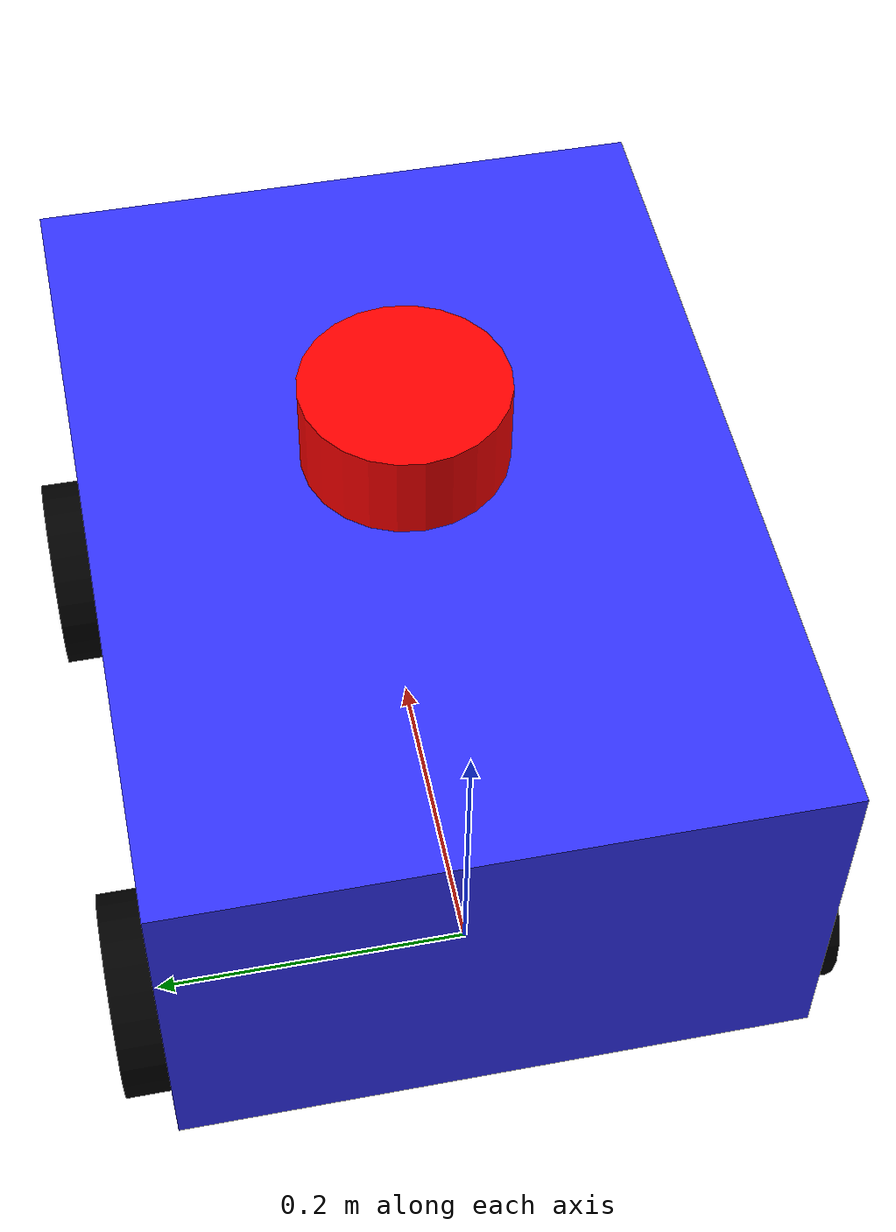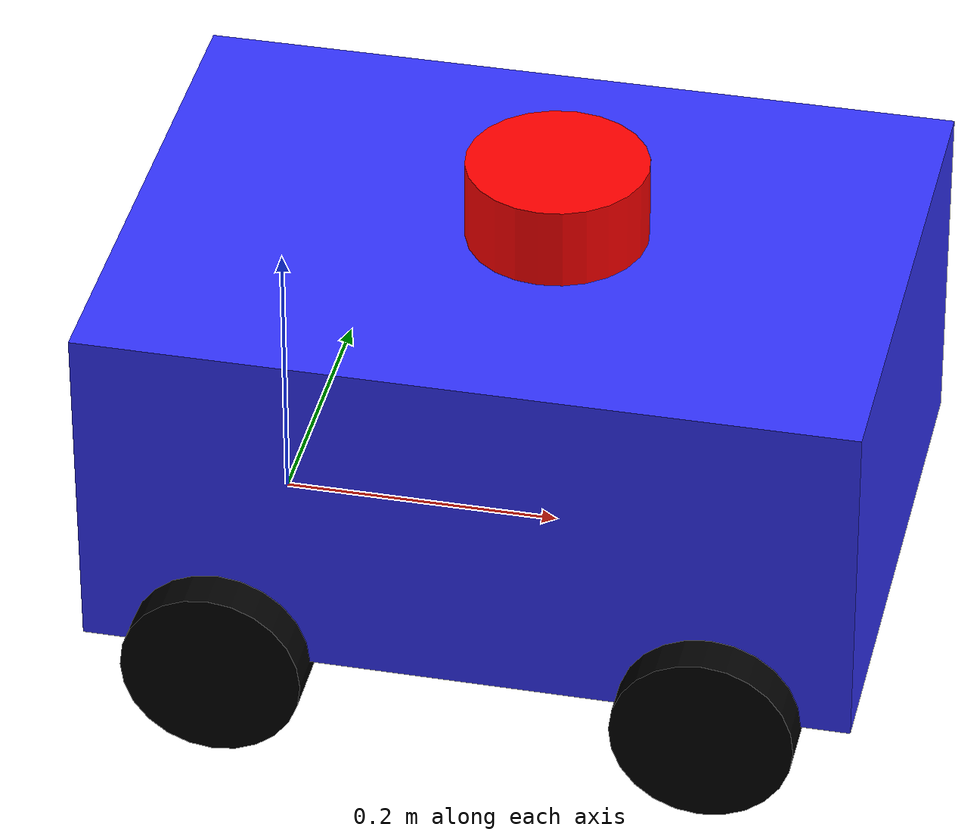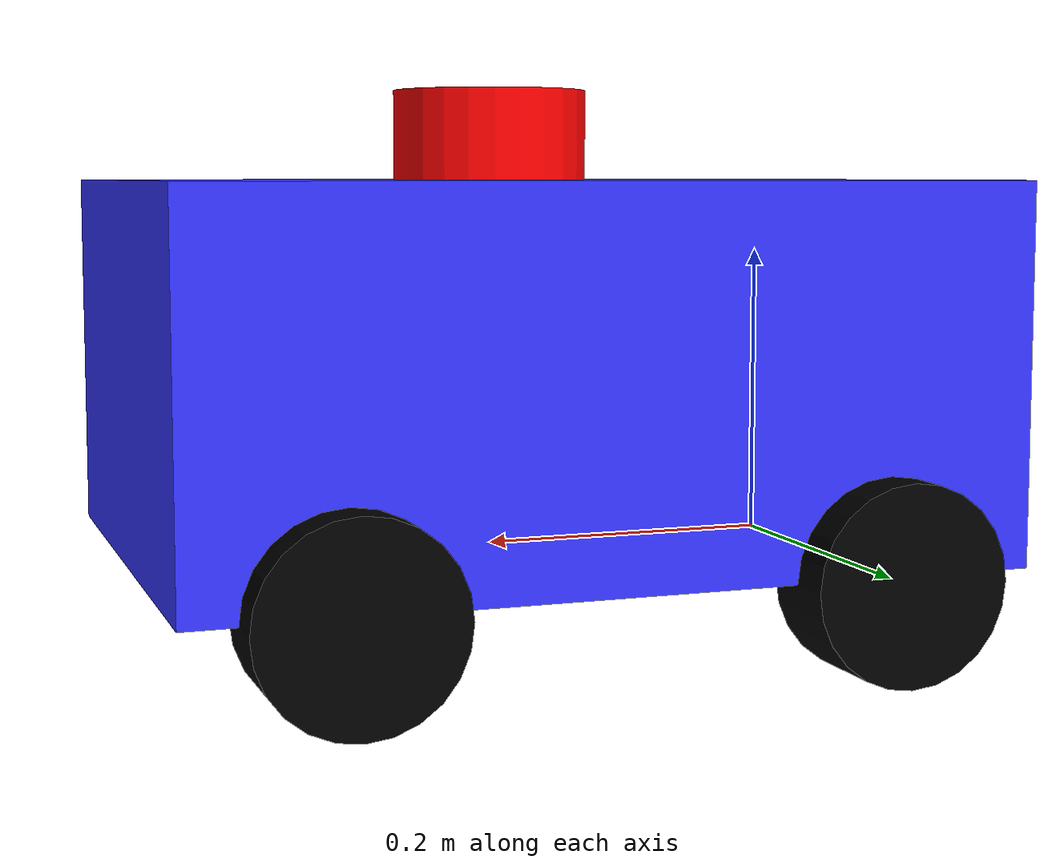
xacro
<?xml version="1.0"?>
<robot xmlns:xacro="http://www.ros.org/wiki/xacro"  name="robot">

    <xacro:arg name="use_ros2_control" default="true"/>
    <xacro:arg name="sim_mode" default="false"/>  <!--false for real robot-->

    <xacro:include filename="robot_core.xacro" />

    <xacro:if value="$(arg use_ros2_control)">
        <xacro:include filename="ros2_control.xacro" />
    </xacro:if>
    <xacro:unless value="$(arg use_ros2_control)">
        <xacro:include filename="gazebo_control.xacro" />
    </xacro:unless>

    <xacro:include filename="lidar.xacro" />

</robot>

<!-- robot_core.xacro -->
<robot xmlns:xacro="http://www.ros.org/wiki/xacro" >
 <xacro:include filename="inertial_macros.xacro" />
    <xacro:property name="chassis_length" value="0.55"/>
    <xacro:property name="chassis_width" value="0.4"/>
    <xacro:property name="chassis_height" value="0.25"/>
    <xacro:property name="chassis_mass" value="0.5"/>
    <xacro:property name="wheel_radius" value="0.065"/>
    <xacro:property name="wheel_thickness" value="0.06"/>
    <xacro:property name="wheel_mass" value="0.1"/>
    <xacro:property name="wheel_offset_x" value="0.45"/>
    <xacro:property name="wheel_offset_y" value="0.2"/>

<material name="white">
    <color rgba="1 1 1 1"/>
</material>

<material name="orange">
    <color rgba="1 0.3 0.1 1"/>
</material>

<material name="blue">
    <color rgba="0.2 0.2 1 1"/>
</material>

<material name="red">
    <color rgba="1 0 0 1"/>
</material>

<material name="black">
    <color rgba="0 0 0 1"/>
</material>

<!-- BASE LINK -->
<link name="base_link">

</link>

<!-- BASE_FOOTPRINT LINK -->
<joint name="base_footprint_joint" type="fixed">
    <parent link="base_link"/>
    <child link="base_footprint"/>
    <origin xyz="0 0 0" rpy="0 0 0"/>
</joint>

<link name="base_footprint">
</link>

<!-- CHASSIS LINK -->
<joint name="chasis_joint" type="fixed">
  <parent link="base_link"/>
  <child link="chassis"/>
  <origin xyz="-0.1 0 0"/>
</joint>

<link name="chassis">
    <visual>
        <origin xyz="${chassis_length/2} 0 ${chassis_height/2}" rpy="0 0 0"/>
        <geometry>
            <box size="${chassis_length} ${chassis_width} ${chassis_height}"/>
        </geometry>
        <material name="blue"/>
    </visual>

    <collision>
        <origin xyz="${chassis_length/2} 0 ${chassis_height/2}" rpy="0 0 0"/>
        <geometry>
            <box size="${chassis_length} ${chassis_width} ${chassis_height}"/>
        </geometry>
    </collision>
    <xacro:inertial_box mass="${chassis_mass}" x="${chassis_length}" y="${chassis_width}" z="${chassis_height}">
     <origin xyz="${chassis_length/2} 0 ${chassis_height/2}" rpy="0 0 0"/>
    </xacro:inertial_box>
</link>
<gazebo reference="chassis">
    <material>Gazebo/Blue</material>
</gazebo>

<!-- Back LEFT WHEEL -->
<joint name="back_left_wheel_joint" type="continuous">
    <parent link="base_link"/>
    <child link="back_left_wheel"/>
    <origin xyz="0 ${wheel_offset_y} 0" rpy="-${pi/2} 0 0"/>
    <axis xyz="0 0 1"/>
</joint>

<link name="back_left_wheel">
    <visual>
        <geometry>
            <cylinder length="${wheel_thickness}" radius="${wheel_radius}" />
        </geometry>
        <material name="black"/>
    </visual>
    <collision>
        <geometry>
            <cylinder length="${wheel_thickness}" radius="${wheel_radius}" />
        </geometry>
    </collision>
    <xacro:inertial_cylinder mass="${wheel_mass}" length="${wheel_thickness}" radius="${wheel_radius}">
      <origin xyz="0 0 0" rpy="0 0 0"/>
    </xacro:inertial_cylinder>
</link>
<gazebo reference="back_left_wheel">
    <material>Gazebo/Black</material>
</gazebo>
<!-- BACK RIGHT WHEEL -->

<joint name="back_right_wheel_joint" type="continuous">
    <parent link="base_link"/>
    <child link="back_right_wheel"/>
    <origin xyz="0 ${-wheel_offset_y} 0" rpy="${pi/2} 0 0"/>
    <axis xyz="0 0 -1"/>
</joint>

<link name="back_right_wheel">
    <visual>
        <geometry>
            <cylinder length="${wheel_thickness}" radius="${wheel_radius}" />
        </geometry>
        <material name="black"/>
    </visual>
    <collision>
        <geometry>
            <cylinder length="${wheel_thickness}" radius="${wheel_radius}" />
        </geometry>
    </collision>
    <xacro:inertial_cylinder mass="${wheel_mass}" length="${wheel_thickness}" radius="${wheel_radius}">
      <origin xyz="0 0 0" rpy="0 0 0"/>
    </xacro:inertial_cylinder>
</link>
<gazebo reference="back_right_wheel">
    <material>Gazebo/Black</material>
</gazebo>

<!-- FRONT LEFT WHEEL -->
<joint name="front_left_wheel_joint" type="fixed">
    <parent link="chassis"/>
    <child link="front_left_wheel"/>
    <origin xyz="${wheel_offset_x} ${wheel_offset_y} 0" rpy="-${pi/2} 0 0"/>
    <axis xyz="0 0 1"/>
</joint>

<link name="front_left_wheel">
    <visual>
        <geometry>
            <cylinder length="${wheel_thickness}" radius="${wheel_radius}" />
        </geometry>
        <material name="black"/>
    </visual>
    <collision>
        <geometry>
            <cylinder length="${wheel_thickness}" radius="${wheel_radius}" />
        </geometry>
        <material name="black"/>
    </collision>
    <xacro:inertial_cylinder mass="${wheel_mass}" length="${wheel_thickness}" radius="${wheel_radius}">
      <origin xyz="0 0 0" rpy="0 0 0"/>
    </xacro:inertial_cylinder>

</link>
<gazebo reference="front_left_wheel">
    <material>Gazebo/Black</material>
</gazebo>
<!-- FRONT RIGHT WHEEL -->

<joint name="front_right_wheel_joint" type="fixed">
    <parent link="chassis"/>
    <child link="front_right_wheel"/>
    <origin xyz="${wheel_offset_x} ${-wheel_offset_y} 0" rpy="${pi/2} 0 0"/>
    <axis xyz="0 0 -1"/>
</joint>

<link name="front_right_wheel">
    <visual>
        <geometry>
         <cylinder length="${wheel_thickness}" radius="${wheel_radius}"/>
        </geometry>
        <material name="black"/>
    </visual>
    <collision>
        <geometry>
            <cylinder length="${wheel_thickness}" radius="${wheel_radius}" />
        </geometry>
        <material name="black"/>
    </collision>
    <xacro:inertial_cylinder mass="${wheel_mass}" length="${wheel_thickness}" radius="${wheel_radius}">
      <origin xyz="0 0 0" rpy="0 0 0"/>
    </xacro:inertial_cylinder>
</link>

 <gazebo reference="front_right_wheel">
    <material>Gazebo/Black</material>
</gazebo>

</robot>

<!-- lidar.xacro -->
<robot xmlns:xacro="http://www.ros.org/wiki/xacro" >

    <joint name="laser_joint" type="fixed">
        <parent link="chassis"/>
        <child link="laser_frame"/>
        <origin xyz="0.3 0 0.28" rpy="0 0 0"/>
    </joint>

    <link name="laser_frame">
         <visual>
        <geometry>
            <cylinder length="0.06" radius="0.065" />
        </geometry>
        <material name="red"/>
    </visual>
    <collision>
        <geometry>
            <cylinder length="0.06" radius="0.065" />
        </geometry>
    </collision>
    <xacro:inertial_cylinder mass="0.1" length="0.06" radius="0.065">
      <origin xyz="0 0 0" rpy="0 0 0"/>
    </xacro:inertial_cylinder>
    </link>

    <gazebo reference="laser_frame">
        <material>Gazebo/Red</material>

        <sensor name="laser" type="ray">
            <pose> 0 0 0 0 0 0 </pose>
            <visualize>true</visualize>
            <update_rate>10</update_rate>
            <ray>
                <scan>
                    <horizontal>
                        <samples>360</samples>
                        <min_angle>-3.14</min_angle>
                        <max_angle>3.14</max_angle>
                    </horizontal>
                </scan>
                <range>
                    <min>0.3</min>
                    <max>12</max>
                </range>
            </ray>
            <plugin name="laser_controller" filename="libgazebo_ros_ray_sensor.so">
                <ros>
                    <argument>~/out:=scan</argument>
                </ros>
                <output_type>sensor_msgs/LaserScan</output_type>
                <frame_name>laser_frame</frame_name>
            </plugin>
        </sensor>
    </gazebo>

</robot>
